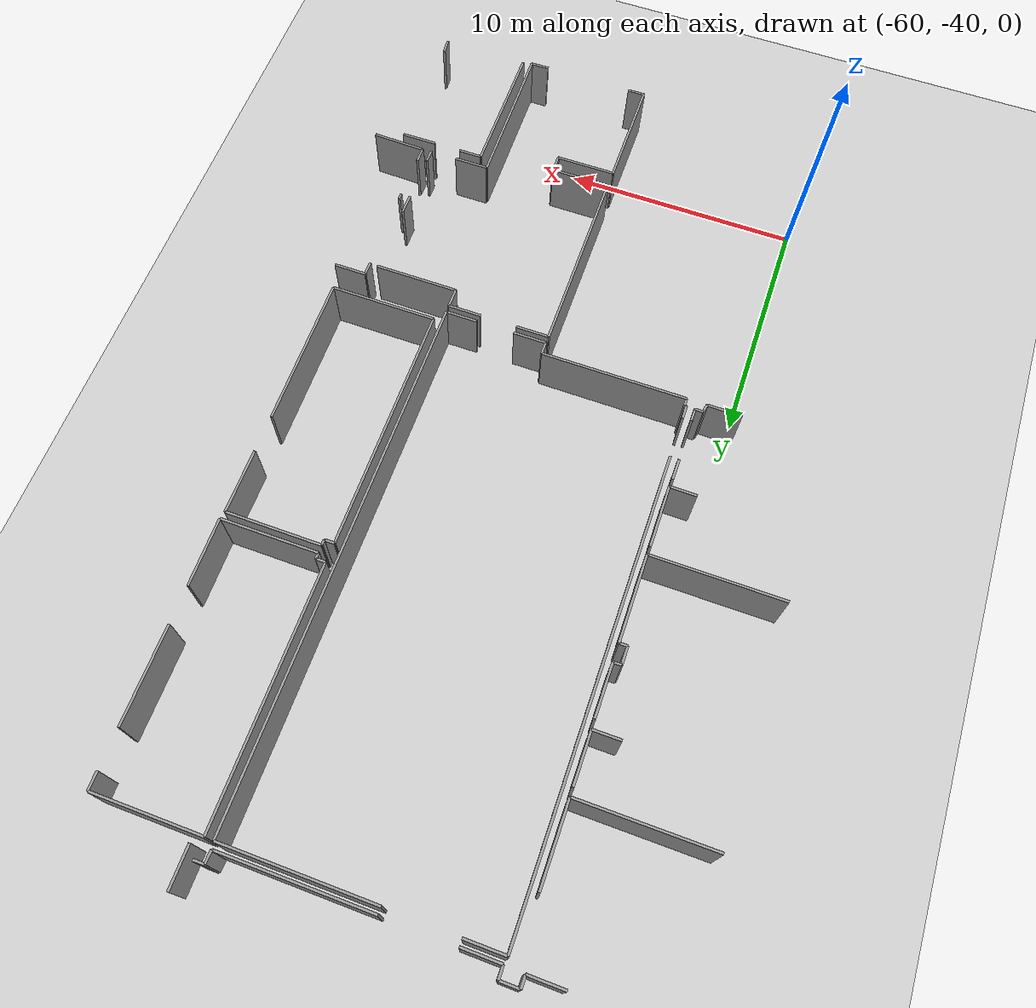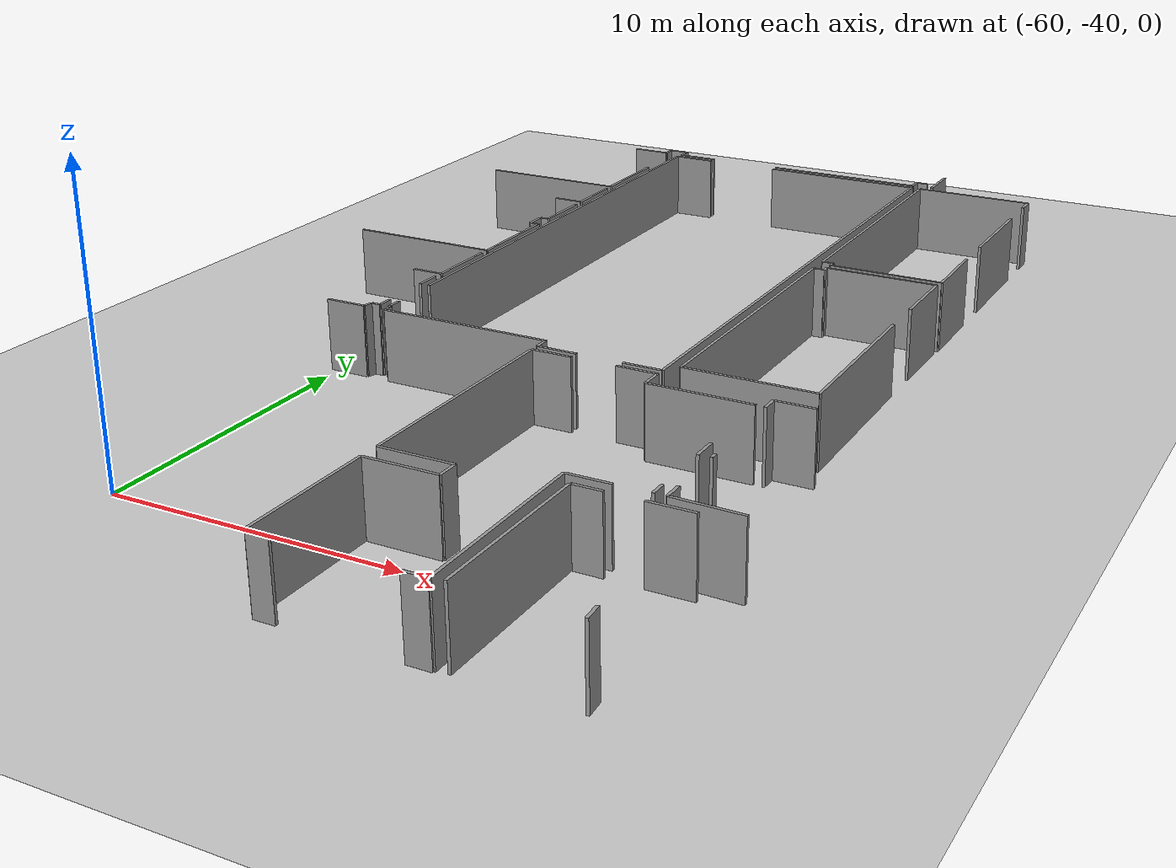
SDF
<sdf version="1.6">
 <world name="default">
  <model name="ground_plane">
   <static>1</static>
   <link name="link">
    <collision name="collision">
     <geometry><plane><normal>0 0 1</normal><size>100 100</size></plane></geometry>
     <surface><friction><ode><mu>100</mu><mu2>50</mu2></ode></friction></surface>
    </collision>
    <visual name="visual">
     <cast_shadows>0</cast_shadows>
     <geometry><plane><normal>0 0 1</normal><size>100 100</size></plane></geometry>
     <material>
      <script><uri>file://media/materials/scripts/gazebo.material</uri><name>Gazebo/Grey</name></script>
     </material>
    </visual>
   </link>
  </model>
  <model name="50015848">
   <static>1</static>
   <link name="Wall_125">
    <collision name="Wall_125_Collision">
     <geometry><box><size>6.00473203128 0.1 2.5</size></box></geometry>
     <pose>3.00236601564 0 1.25 0 0 0</pose>
    </collision>
    <visual name="Wall_125_Visual">
     <pose>3.00236601564 0 1.25 0 0 0</pose>
     <geometry><box><size>6.00473203128 0.1 2.5</size></box></geometry>
     <material>
      <script><uri>file://media/materials/scripts/gazebo.material</uri><name>Gazebo/Grey</name></script>
      <ambient>1 1 1 1</ambient>
     </material>
    </visual>
    <pose>84.1783963108 -51.3000399622 0 0 0 3.14159265359</pose>
   </link>
   <link name="Wall_126">
    <collision name="Wall_126_Collision">
     <geometry><box><size>1.52617523739 0.1 2.5</size></box></geometry>
     <pose>0.763087618697 0 1.25 0 0 0</pose>
    </collision>
    <visual name="Wall_126_Visual">
     <pose>0.763087618697 0 1.25 0 0 0</pose>
     <geometry><box><size>1.52617523739 0.1 2.5</size></box></geometry>
     <material>
      <script><uri>file://media/materials/scripts/gazebo.material</uri><name>Gazebo/Grey</name></script>
      <ambient>1 1 1 1</ambient>
     </material>
    </visual>
    <pose>75.3352066934 -51.3000399622 0 0 0 3.14159265359</pose>
   </link>
   <link name="Wall_127">
    <collision name="Wall_127_Collision">
     <geometry><box><size>0.504665427627 0.1 2.5</size></box></geometry>
     <pose>0.252332713814 0 1.25 0 0 0</pose>
    </collision>
    <visual name="Wall_127_Visual">
     <pose>0.252332713814 0 1.25 0 0 0</pose>
     <geometry><box><size>0.504665427627 0.1 2.5</size></box></geometry>
     <material>
      <script><uri>file://media/materials/scripts/gazebo.material</uri><name>Gazebo/Grey</name></script>
      <ambient>1 1 1 1</ambient>
     </material>
    </visual>
    <pose>73.809031456 -51.3000399622 0 0 0 1.57079632679</pose>
   </link>
   <link name="Wall_128">
    <collision name="Wall_128_Collision">
     <geometry><box><size>0.769557688282 0.1 2.5</size></box></geometry>
     <pose>0.384778844141 0 1.25 0 0 0</pose>
    </collision>
    <visual name="Wall_128_Visual">
     <pose>0.384778844141 0 1.25 0 0 0</pose>
     <geometry><box><size>0.769557688282 0.1 2.5</size></box></geometry>
     <material>
      <script><uri>file://media/materials/scripts/gazebo.material</uri><name>Gazebo/Grey</name></script>
      <ambient>1 1 1 1</ambient>
     </material>
    </visual>
    <pose>73.809031456 -50.7953745346 0 0 0 3.14159265359</pose>
   </link>
   <link name="Wall_129">
    <collision name="Wall_129_Collision">
     <geometry><box><size>0.466606194774 0.1 2.5</size></box></geometry>
     <pose>0.233303097387 0 1.25 0 0 0</pose>
    </collision>
    <visual name="Wall_129_Visual">
     <pose>0.233303097387 0 1.25 0 0 0</pose>
     <geometry><box><size>0.466606194774 0.1 2.5</size></box></geometry>
     <material>
      <script><uri>file://media/materials/scripts/gazebo.material</uri><name>Gazebo/Grey</name></script>
      <ambient>1 1 1 1</ambient>
     </material>
    </visual>
    <pose>73.0394737677 -50.7953745346 0 0 0 -1.57079632679</pose>
   </link>
   <link name="Wall_130">
    <collision name="Wall_130_Collision">
     <geometry><box><size>1.42544513444 0.1 2.5</size></box></geometry>
     <pose>0.712722567222 0 1.25 0 0 0</pose>
    </collision>
    <visual name="Wall_130_Visual">
     <pose>0.712722567222 0 1.25 0 0 0</pose>
     <geometry><box><size>1.42544513444 0.1 2.5</size></box></geometry>
     <material>
      <script><uri>file://media/materials/scripts/gazebo.material</uri><name>Gazebo/Grey</name></script>
      <ambient>1 1 1 1</ambient>
     </material>
    </visual>
    <pose>73.0394737677 -51.2619807293 0 0 0 3.14159265359</pose>
   </link>
   <link name="Wall_175">
    <collision name="Wall_175_Collision">
     <geometry><box><size>0.438949818901 0.1 2.5</size></box></geometry>
     <pose>0.219474909451 0 1.25 0 0 0</pose>
    </collision>
    <visual name="Wall_175_Visual">
     <pose>0.219474909451 0 1.25 0 0 0</pose>
     <geometry><box><size>0.438949818901 0.1 2.5</size></box></geometry>
     <material>
      <script><uri>file://media/materials/scripts/gazebo.material</uri><name>Gazebo/Grey</name></script>
      <ambient>1 1 1 1</ambient>
     </material>
    </visual>
    <pose>84.6424652234 -50.7953745346 0 0 0 3.14159265359</pose>
   </link>
   <link name="Wall_176">
    <collision name="Wall_176_Collision">
     <geometry><box><size>0.50529017674 0.1 2.5</size></box></geometry>
     <pose>0.25264508837 0 1.25 0 0 0</pose>
    </collision>
    <visual name="Wall_176_Visual">
     <pose>0.25264508837 0 1.25 0 0 0</pose>
     <geometry><box><size>0.50529017674 0.1 2.5</size></box></geometry>
     <material>
      <script><uri>file://media/materials/scripts/gazebo.material</uri><name>Gazebo/Grey</name></script>
      <ambient>1 1 1 1</ambient>
     </material>
    </visual>
    <pose>84.2035154045 -50.7953745346 0 0 0 -1.62052903983</pose>
   </link>
   <link name="Wall_459">
    <collision name="Wall_459_Collision">
     <geometry><box><size>1.12985175929 0.1 2.5</size></box></geometry>
     <pose>0.564925879644 0 1.25 0 0 0</pose>
    </collision>
    <visual name="Wall_459_Visual">
     <pose>0.564925879644 0 1.25 0 0 0</pose>
     <geometry><box><size>1.12985175929 0.1 2.5</size></box></geometry>
     <material>
      <script><uri>file://media/materials/scripts/gazebo.material</uri><name>Gazebo/Grey</name></script>
      <ambient>1 1 1 1</ambient>
     </material>
    </visual>
    <pose>73.4177825422 -59.4518201828 0 0 0 3.14159265359</pose>
   </link>
   <link name="Wall_463">
    <collision name="Wall_463_Collision">
     <geometry><box><size>2.09731759653 0.1 2.5</size></box></geometry>
     <pose>1.04865879827 0 1.25 0 0 0</pose>
    </collision>
    <visual name="Wall_463_Visual">
     <pose>1.04865879827 0 1.25 0 0 0</pose>
     <geometry><box><size>2.09731759653 0.1 2.5</size></box></geometry>
     <material>
      <script><uri>file://media/materials/scripts/gazebo.material</uri><name>Gazebo/Grey</name></script>
      <ambient>1 1 1 1</ambient>
     </material>
    </visual>
    <pose>73.4185437269 -57.3545027244 0 0 0 -1.57115925927</pose>
   </link>
   <link name="Wall_464">
    <collision name="Wall_464_Collision">
     <geometry><box><size>5.42876897411 0.1 2.5</size></box></geometry>
     <pose>2.71438448706 0 1.25 0 0 0</pose>
    </collision>
    <visual name="Wall_464_Visual">
     <pose>2.71438448706 0 1.25 0 0 0</pose>
     <geometry><box><size>5.42876897411 0.1 2.5</size></box></geometry>
     <material>
      <script><uri>file://media/materials/scripts/gazebo.material</uri><name>Gazebo/Grey</name></script>
      <ambient>1 1 1 1</ambient>
     </material>
    </visual>
    <pose>73.4388419844 -66.3410487856 0 0 0 3.14159265359</pose>
   </link>
   <link name="Wall_468">
    <collision name="Wall_468_Collision">
     <geometry><box><size>2.16582407754 0.1 2.5</size></box></geometry>
     <pose>1.08291203877 0 1.25 0 0 0</pose>
    </collision>
    <visual name="Wall_468_Visual">
     <pose>1.08291203877 0 1.25 0 0 0</pose>
     <geometry><box><size>2.16582407754 0.1 2.5</size></box></geometry>
     <material>
      <script><uri>file://media/materials/scripts/gazebo.material</uri><name>Gazebo/Grey</name></script>
      <ambient>1 1 1 1</ambient>
     </material>
    </visual>
    <pose>73.4289465839 -59.8352035217 0 0 0 -1.57079632679</pose>
   </link>
   <link name="Wall_469">
    <collision name="Wall_469_Collision">
     <geometry><box><size>0.329085500067 0.1 2.5</size></box></geometry>
     <pose>0.164542750033 0 1.25 0 0 0</pose>
    </collision>
    <visual name="Wall_469_Visual">
     <pose>0.164542750033 0 1.25 0 0 0</pose>
     <geometry><box><size>0.329085500067 0.1 2.5</size></box></geometry>
     <material>
      <script><uri>file://media/materials/scripts/gazebo.material</uri><name>Gazebo/Grey</name></script>
      <ambient>1 1 1 1</ambient>
     </material>
    </visual>
    <pose>73.4289465839 -62.0010275993 0 0 0 3.14159265359</pose>
   </link>
   <link name="Wall_470">
    <collision name="Wall_470_Collision">
     <geometry><box><size>0.74164758419 0.1 2.5</size></box></geometry>
     <pose>0.370823792095 0 1.25 0 0 0</pose>
    </collision>
    <visual name="Wall_470_Visual">
     <pose>0.370823792095 0 1.25 0 0 0</pose>
     <geometry><box><size>0.74164758419 0.1 2.5</size></box></geometry>
     <material>
      <script><uri>file://media/materials/scripts/gazebo.material</uri><name>Gazebo/Grey</name></script>
      <ambient>1 1 1 1</ambient>
     </material>
    </visual>
    <pose>73.0998610838 -62.0010275993 0 0 0 -1.57079632679</pose>
   </link>
   <link name="Wall_471">
    <collision name="Wall_471_Collision">
     <geometry><box><size>0.329085500067 0.1 2.5</size></box></geometry>
     <pose>0.164542750033 0 1.25 0 0 0</pose>
    </collision>
    <visual name="Wall_471_Visual">
     <pose>0.164542750033 0 1.25 0 0 0</pose>
     <geometry><box><size>0.329085500067 0.1 2.5</size></box></geometry>
     <material>
      <script><uri>file://media/materials/scripts/gazebo.material</uri><name>Gazebo/Grey</name></script>
      <ambient>1 1 1 1</ambient>
     </material>
    </visual>
    <pose>73.0998610838 -62.7426751835 0 0 0 0.0</pose>
   </link>
   <link name="Wall_472">
    <collision name="Wall_472_Collision">
     <geometry><box><size>3.59838720809 0.1 2.5</size></box></geometry>
     <pose>1.79919360405 0 1.25 0 0 0</pose>
    </collision>
    <visual name="Wall_472_Visual">
     <pose>1.79919360405 0 1.25 0 0 0</pose>
     <geometry><box><size>3.59838720809 0.1 2.5</size></box></geometry>
     <material>
      <script><uri>file://media/materials/scripts/gazebo.material</uri><name>Gazebo/Grey</name></script>
      <ambient>1 1 1 1</ambient>
     </material>
    </visual>
    <pose>73.4289465839 -62.7426751835 0 0 0 -1.56804636898</pose>
   </link>
   <link name="Wall_477">
    <collision name="Wall_477_Collision">
     <geometry><box><size>1.11615043546 0.1 2.5</size></box></geometry>
     <pose>0.558075217731 0 1.25 0 0 0</pose>
    </collision>
    <visual name="Wall_477_Visual">
     <pose>0.558075217731 0 1.25 0 0 0</pose>
     <geometry><box><size>1.11615043546 0.1 2.5</size></box></geometry>
     <material>
      <script><uri>file://media/materials/scripts/gazebo.material</uri><name>Gazebo/Grey</name></script>
      <ambient>1 1 1 1</ambient>
     </material>
    </visual>
    <pose>73.4251406606 -69.2675500637 0 0 0 3.14159265359</pose>
   </link>
   <link name="Wall_480">
    <collision name="Wall_480_Collision">
     <geometry><box><size>2.58702338526 0.1 2.5</size></box></geometry>
     <pose>1.29351169263 0 1.25 0 0 0</pose>
    </collision>
    <visual name="Wall_480_Visual">
     <pose>1.29351169263 0 1.25 0 0 0</pose>
     <geometry><box><size>2.58702338526 0.1 2.5</size></box></geometry>
     <material>
      <script><uri>file://media/materials/scripts/gazebo.material</uri><name>Gazebo/Grey</name></script>
      <ambient>1 1 1 1</ambient>
     </material>
    </visual>
    <pose>73.4177825422 -66.6805371426 0 0 0 -1.56795208182</pose>
   </link>
   <link name="Wall_481">
    <collision name="Wall_481_Collision">
     <geometry><box><size>1.4381315454 0.1 2.5</size></box></geometry>
     <pose>0.719065772698 0 1.25 0 0 0</pose>
    </collision>
    <visual name="Wall_481_Visual">
     <pose>0.719065772698 0 1.25 0 0 0</pose>
     <geometry><box><size>1.4381315454 0.1 2.5</size></box></geometry>
     <material>
      <script><uri>file://media/materials/scripts/gazebo.material</uri><name>Gazebo/Grey</name></script>
      <ambient>1 1 1 1</ambient>
     </material>
    </visual>
    <pose>72.9889818521 -73.1488306301 0 0 0 3.14159265359</pose>
   </link>
   <link name="Wall_490">
    <collision name="Wall_490_Collision">
     <geometry><box><size>0.89946653642 0.1 2.5</size></box></geometry>
     <pose>0.44973326821 0 1.25 0 0 0</pose>
    </collision>
    <visual name="Wall_490_Visual">
     <pose>0.44973326821 0 1.25 0 0 0</pose>
     <geometry><box><size>0.89946653642 0.1 2.5</size></box></geometry>
     <material>
      <script><uri>file://media/materials/scripts/gazebo.material</uri><name>Gazebo/Grey</name></script>
      <ambient>1 1 1 1</ambient>
     </material>
    </visual>
    <pose>73.3868276995 -69.5984116613 0 0 0 -1.57079632679</pose>
   </link>
   <link name="Wall_491">
    <collision name="Wall_491_Collision">
     <geometry><box><size>0.535873998566 0.1 2.5</size></box></geometry>
     <pose>0.267936999283 0 1.25 0 0 0</pose>
    </collision>
    <visual name="Wall_491_Visual">
     <pose>0.267936999283 0 1.25 0 0 0</pose>
     <geometry><box><size>0.535873998566 0.1 2.5</size></box></geometry>
     <material>
      <script><uri>file://media/materials/scripts/gazebo.material</uri><name>Gazebo/Grey</name></script>
      <ambient>1 1 1 1</ambient>
     </material>
    </visual>
    <pose>73.3868276995 -72.2721996334 0 0 0 -1.57079632679</pose>
   </link>
   <link name="Wall_492">
    <collision name="Wall_492_Collision">
     <geometry><box><size>0.322234838153 0.1 2.5</size></box></geometry>
     <pose>0.161117419077 0 1.25 0 0 0</pose>
    </collision>
    <visual name="Wall_492_Visual">
     <pose>0.161117419077 0 1.25 0 0 0</pose>
     <geometry><box><size>0.322234838153 0.1 2.5</size></box></geometry>
     <material>
      <script><uri>file://media/materials/scripts/gazebo.material</uri><name>Gazebo/Grey</name></script>
      <ambient>1 1 1 1</ambient>
     </material>
    </visual>
    <pose>73.3868276995 -72.8080736319 0 0 0 3.14159265359</pose>
   </link>
   <link name="Wall_493">
    <collision name="Wall_493_Collision">
     <geometry><box><size>0.349044920468 0.1 2.5</size></box></geometry>
     <pose>0.174522460234 0 1.25 0 0 0</pose>
    </collision>
    <visual name="Wall_493_Visual">
     <pose>0.174522460234 0 1.25 0 0 0</pose>
     <geometry><box><size>0.349044920468 0.1 2.5</size></box></geometry>
     <material>
      <script><uri>file://media/materials/scripts/gazebo.material</uri><name>Gazebo/Grey</name></script>
      <ambient>1 1 1 1</ambient>
     </material>
    </visual>
    <pose>73.0645928614 -72.8080736319 0 0 0 -1.78914988988</pose>
   </link>
   <link name="Wall_494">
    <collision name="Wall_494_Collision">
     <geometry><box><size>1.33638652957 0.1 2.5</size></box></geometry>
     <pose>0.668193264784 0 1.25 0 0 0</pose>
    </collision>
    <visual name="Wall_494_Visual">
     <pose>0.668193264784 0 1.25 0 0 0</pose>
     <geometry><box><size>1.33638652957 0.1 2.5</size></box></geometry>
     <material>
      <script><uri>file://media/materials/scripts/gazebo.material</uri><name>Gazebo/Grey</name></script>
      <ambient>1 1 1 1</ambient>
     </material>
    </visual>
    <pose>84.197172199 -73.6748092281 0 0 0 3.14159265359</pose>
   </link>
   <link name="Wall_495">
    <collision name="Wall_495_Collision">
     <geometry><box><size>1.37825168571 0.1 2.5</size></box></geometry>
     <pose>0.689125842853 0 1.25 0 0 0</pose>
    </collision>
    <visual name="Wall_495_Visual">
     <pose>0.689125842853 0 1.25 0 0 0</pose>
     <geometry><box><size>1.37825168571 0.1 2.5</size></box></geometry>
     <material>
      <script><uri>file://media/materials/scripts/gazebo.material</uri><name>Gazebo/Grey</name></script>
      <ambient>1 1 1 1</ambient>
     </material>
    </visual>
    <pose>81.2668649976 -73.6748092281 0 0 0 3.14159265359</pose>
   </link>
   <link name="Wall_496">
    <collision name="Wall_496_Collision">
     <geometry><box><size>0.522426402958 0.1 2.5</size></box></geometry>
     <pose>0.261213201479 0 1.25 0 0 0</pose>
    </collision>
    <visual name="Wall_496_Visual">
     <pose>0.261213201479 0 1.25 0 0 0</pose>
     <geometry><box><size>0.522426402958 0.1 2.5</size></box></geometry>
     <material>
      <script><uri>file://media/materials/scripts/gazebo.material</uri><name>Gazebo/Grey</name></script>
      <ambient>1 1 1 1</ambient>
     </material>
    </visual>
    <pose>79.8886133119 -73.6748092281 0 0 0 1.57079632679</pose>
   </link>
   <link name="Wall_497">
    <collision name="Wall_497_Collision">
     <geometry><box><size>6.06588053207 0.1 2.5</size></box></geometry>
     <pose>3.03294026603 0 1.25 0 0 0</pose>
    </collision>
    <visual name="Wall_497_Visual">
     <pose>3.03294026603 0 1.25 0 0 0</pose>
     <geometry><box><size>6.06588053207 0.1 2.5</size></box></geometry>
     <material>
      <script><uri>file://media/materials/scripts/gazebo.material</uri><name>Gazebo/Grey</name></script>
      <ambient>1 1 1 1</ambient>
     </material>
    </visual>
    <pose>79.8886133119 -73.1523828251 0 0 0 3.14159265359</pose>
   </link>
   <link name="Wall_498">
    <collision name="Wall_498_Collision">
     <geometry><box><size>0.331622782257 0.1 2.5</size></box></geometry>
     <pose>0.165811391128 0 1.25 0 0 0</pose>
    </collision>
    <visual name="Wall_498_Visual">
     <pose>0.165811391128 0 1.25 0 0 0</pose>
     <geometry><box><size>0.331622782257 0.1 2.5</size></box></geometry>
     <material>
      <script><uri>file://media/materials/scripts/gazebo.material</uri><name>Gazebo/Grey</name></script>
      <ambient>1 1 1 1</ambient>
     </material>
    </visual>
    <pose>73.8227327798 -73.1523828251 0 0 0 1.57079632679</pose>
   </link>
   <link name="Wall_499">
    <collision name="Wall_499_Collision">
     <geometry><box><size>0.0768796503625 0.1 2.5</size></box></geometry>
     <pose>0.0384398251813 0 1.25 0 0 0</pose>
    </collision>
    <visual name="Wall_499_Visual">
     <pose>0.0384398251813 0 1.25 0 0 0</pose>
     <geometry><box><size>0.0768796503625 0.1 2.5</size></box></geometry>
     <material>
      <script><uri>file://media/materials/scripts/gazebo.material</uri><name>Gazebo/Grey</name></script>
      <ambient>1 1 1 1</ambient>
     </material>
    </visual>
    <pose>73.8227327798 -72.8207600429 0 0 0 3.14159265359</pose>
   </link>
   <link name="Wall_500">
    <collision name="Wall_500_Collision">
     <geometry><box><size>0.567590025944 0.1 2.5</size></box></geometry>
     <pose>0.283795012972 0 1.25 0 0 0</pose>
    </collision>
    <visual name="Wall_500_Visual">
     <pose>0.283795012972 0 1.25 0 0 0</pose>
     <geometry><box><size>0.567590025944 0.1 2.5</size></box></geometry>
     <material>
      <script><uri>file://media/materials/scripts/gazebo.material</uri><name>Gazebo/Grey</name></script>
      <ambient>1 1 1 1</ambient>
     </material>
    </visual>
    <pose>73.7458531294 -72.8207600429 0 0 0 1.57079632679</pose>
   </link>
   <link name="Wall_501">
    <collision name="Wall_501_Collision">
     <geometry><box><size>18.931931062 0.1 2.5</size></box></geometry>
     <pose>9.46596553102 0 1.25 0 0 0</pose>
    </collision>
    <visual name="Wall_501_Visual">
     <pose>9.46596553102 0 1.25 0 0 0</pose>
     <geometry><box><size>18.931931062 0.1 2.5</size></box></geometry>
     <material>
      <script><uri>file://media/materials/scripts/gazebo.material</uri><name>Gazebo/Grey</name></script>
      <ambient>1 1 1 1</ambient>
     </material>
    </visual>
    <pose>73.7458531294 -70.5092959676 0 0 0 1.57079632679</pose>
   </link>
   <link name="Wall_502">
    <collision name="Wall_502_Collision">
     <geometry><box><size>1.58935356393 0.1 2.5</size></box></geometry>
     <pose>0.794676781965 0 1.25 0 0 0</pose>
    </collision>
    <visual name="Wall_502_Visual">
     <pose>0.794676781965 0 1.25 0 0 0</pose>
     <geometry><box><size>1.58935356393 0.1 2.5</size></box></geometry>
     <material>
      <script><uri>file://media/materials/scripts/gazebo.material</uri><name>Gazebo/Grey</name></script>
      <ambient>1 1 1 1</ambient>
     </material>
    </visual>
    <pose>73.7458531294 -51.5773649056 0 0 0 0.0</pose>
   </link>
   <link name="Wall_503">
    <collision name="Wall_503_Collision">
     <geometry><box><size>6.07247746576 0.1 2.5</size></box></geometry>
     <pose>3.03623873288 0 1.25 0 0 0</pose>
    </collision>
    <visual name="Wall_503_Visual">
     <pose>3.03623873288 0 1.25 0 0 0</pose>
     <geometry><box><size>6.07247746576 0.1 2.5</size></box></geometry>
     <material>
      <script><uri>file://media/materials/scripts/gazebo.material</uri><name>Gazebo/Grey</name></script>
      <ambient>1 1 1 1</ambient>
     </material>
    </visual>
    <pose>78.1703658127 -51.5773649056 0 0 0 0.0</pose>
   </link>
   <link name="Wall_504">
    <collision name="Wall_504_Collision">
     <geometry><box><size>22.097491519 0.1 2.5</size></box></geometry>
     <pose>11.0487457595 0 1.25 0 0 0</pose>
    </collision>
    <visual name="Wall_504_Visual">
     <pose>11.0487457595 0 1.25 0 0 0</pose>
     <geometry><box><size>22.097491519 0.1 2.5</size></box></geometry>
     <material>
      <script><uri>file://media/materials/scripts/gazebo.material</uri><name>Gazebo/Grey</name></script>
      <ambient>1 1 1 1</ambient>
     </material>
    </visual>
    <pose>84.2428432784 -51.5773649056 0 0 0 -1.57286312754</pose>
   </link>
   <link name="Wall_505">
    <collision name="Wall_505_Collision">
     <geometry><box><size>5.42470932261 0.1 2.5</size></box></geometry>
     <pose>2.7123546613 0 1.25 0 0 0</pose>
    </collision>
    <visual name="Wall_505_Visual">
     <pose>2.7123546613 0 1.25 0 0 0</pose>
     <geometry><box><size>5.42470932261 0.1 2.5</size></box></geometry>
     <material>
      <script><uri>file://media/materials/scripts/gazebo.material</uri><name>Gazebo/Grey</name></script>
      <ambient>1 1 1 1</ambient>
     </material>
    </visual>
    <pose>73.4167676294 -57.015775552 0 0 0 3.14159265359</pose>
   </link>
   <link name="Wall_511">
    <collision name="Wall_511_Collision">
     <geometry><box><size>3.25913945724 0.1 2.5</size></box></geometry>
     <pose>1.62956972862 0 1.25 0 0 0</pose>
    </collision>
    <visual name="Wall_511_Visual">
     <pose>1.62956972862 0 1.25 0 0 0</pose>
     <geometry><box><size>3.25913945724 0.1 2.5</size></box></geometry>
     <material>
      <script><uri>file://media/materials/scripts/gazebo.material</uri><name>Gazebo/Grey</name></script>
      <ambient>1 1 1 1</ambient>
     </material>
    </visual>
    <pose>73.4185437269 -53.7566365787 0 0 0 -1.57134128587</pose>
   </link>
   <link name="Wall_512">
    <collision name="Wall_512_Collision">
     <geometry><box><size>1.65481544444 0.1 2.5</size></box></geometry>
     <pose>0.827407722218 0 1.25 0 0 0</pose>
    </collision>
    <visual name="Wall_512_Visual">
     <pose>0.827407722218 0 1.25 0 0 0</pose>
     <geometry><box><size>1.65481544444 0.1 2.5</size></box></geometry>
     <material>
      <script><uri>file://media/materials/scripts/gazebo.material</uri><name>Gazebo/Grey</name></script>
      <ambient>1 1 1 1</ambient>
     </material>
    </visual>
    <pose>84.9723119081 -51.2459958515 0 0 0 1.57079632679</pose>
   </link>
   <link name="Wall_1436">
    <collision name="Wall_1436_Collision">
     <geometry><box><size>4.04544272403 0.1 2.5</size></box></geometry>
     <pose>2.02272136201 0 1.25 0 0 0</pose>
    </collision>
    <visual name="Wall_1436_Visual">
     <pose>2.02272136201 0 1.25 0 0 0</pose>
     <geometry><box><size>4.04544272403 0.1 2.5</size></box></geometry>
     <material>
      <script><uri>file://media/materials/scripts/gazebo.material</uri><name>Gazebo/Grey</name></script>
      <ambient>1 1 1 1</ambient>
     </material>
    </visual>
    <pose>89.0309484995 -62.2344575608 0 0 0 3.14159265359</pose>
   </link>
   <link name="Wall_1437">
    <collision name="Wall_1437_Collision">
     <geometry><box><size>0.249922295733 0.1 2.5</size></box></geometry>
     <pose>0.124961147866 0 1.25 0 0 0</pose>
    </collision>
    <visual name="Wall_1437_Visual">
     <pose>0.124961147866 0 1.25 0 0 0</pose>
     <geometry><box><size>0.249922295733 0.1 2.5</size></box></geometry>
     <material>
      <script><uri>file://media/materials/scripts/gazebo.material</uri><name>Gazebo/Grey</name></script>
      <ambient>1 1 1 1</ambient>
     </material>
    </visual>
    <pose>84.9855057755 -62.2344575608 0 0 0 1.57079632679</pose>
   </link>
   <link name="Wall_1438">
    <collision name="Wall_1438_Collision">
     <geometry><box><size>0.390995185507 0.1 2.5</size></box></geometry>
     <pose>0.195497592754 0 1.25 0 0 0</pose>
    </collision>
    <visual name="Wall_1438_Visual">
     <pose>0.195497592754 0 1.25 0 0 0</pose>
     <geometry><box><size>0.390995185507 0.1 2.5</size></box></geometry>
     <material>
      <script><uri>file://media/materials/scripts/gazebo.material</uri><name>Gazebo/Grey</name></script>
      <ambient>1 1 1 1</ambient>
     </material>
    </visual>
    <pose>84.9855057755 -61.9845352651 0 0 0 3.14159265359</pose>
   </link>
   <link name="Wall_1439">
    <collision name="Wall_1439_Collision">
     <geometry><box><size>10.3919466663 0.1 2.5</size></box></geometry>
     <pose>5.19597333316 0 1.25 0 0 0</pose>
    </collision>
    <visual name="Wall_1439_Visual">
     <pose>5.19597333316 0 1.25 0 0 0</pose>
     <geometry><box><size>10.3919466663 0.1 2.5</size></box></geometry>
     <material>
      <script><uri>file://media/materials/scripts/gazebo.material</uri><name>Gazebo/Grey</name></script>
      <ambient>1 1 1 1</ambient>
     </material>
    </visual>
    <pose>84.59451059 -61.9845352651 0 0 0 1.57079632679</pose>
   </link>
   <link name="Wall_1440">
    <collision name="Wall_1440_Collision">
     <geometry><box><size>4.40700543613 0.1 2.5</size></box></geometry>
     <pose>2.20350271806 0 1.25 0 0 0</pose>
    </collision>
    <visual name="Wall_1440_Visual">
     <pose>2.20350271806 0 1.25 0 0 0</pose>
     <geometry><box><size>4.40700543613 0.1 2.5</size></box></geometry>
     <material>
      <script><uri>file://media/materials/scripts/gazebo.material</uri><name>Gazebo/Grey</name></script>
      <ambient>1 1 1 1</ambient>
     </material>
    </visual>
    <pose>84.59451059 -51.5925885987 0 0 0 0.0</pose>
   </link>
   <link name="Wall_1441">
    <collision name="Wall_1441_Collision">
     <geometry><box><size>0.724901521735 0.1 2.5</size></box></geometry>
     <pose>0.362450760868 0 1.25 0 0 0</pose>
    </collision>
    <visual name="Wall_1441_Visual">
     <pose>0.362450760868 0 1.25 0 0 0</pose>
     <geometry><box><size>0.724901521735 0.1 2.5</size></box></geometry>
     <material>
      <script><uri>file://media/materials/scripts/gazebo.material</uri><name>Gazebo/Grey</name></script>
      <ambient>1 1 1 1</ambient>
     </material>
    </visual>
    <pose>89.0015160261 -51.5925885987 0 0 0 -1.57079632679</pose>
   </link>
   <link name="Wall_1442">
    <collision name="Wall_1442_Collision">
     <geometry><box><size>3.97389136626 0.1 2.5</size></box></geometry>
     <pose>1.98694568313 0 1.25 0 0 0</pose>
    </collision>
    <visual name="Wall_1442_Visual">
     <pose>1.98694568313 0 1.25 0 0 0</pose>
     <geometry><box><size>3.97389136626 0.1 2.5</size></box></geometry>
     <material>
      <script><uri>file://media/materials/scripts/gazebo.material</uri><name>Gazebo/Grey</name></script>
      <ambient>1 1 1 1</ambient>
     </material>
    </visual>
    <pose>89.0015160261 -53.8873066115 0 0 0 -1.57079632679</pose>
   </link>
   <link name="Wall_1443">
    <collision name="Wall_1443_Collision">
     <geometry><box><size>2.82516330806 0.1 2.5</size></box></geometry>
     <pose>1.41258165403 0 1.25 0 0 0</pose>
    </collision>
    <visual name="Wall_1443_Visual">
     <pose>1.41258165403 0 1.25 0 0 0</pose>
     <geometry><box><size>2.82516330806 0.1 2.5</size></box></geometry>
     <material>
      <script><uri>file://media/materials/scripts/gazebo.material</uri><name>Gazebo/Grey</name></script>
      <ambient>1 1 1 1</ambient>
     </material>
    </visual>
    <pose>89.0015160261 -59.4094475702 0 0 0 -1.56037816592</pose>
   </link>
   <link name="Wall_1450">
    <collision name="Wall_1450_Collision">
     <geometry><box><size>4.43897519172 0.1 2.5</size></box></geometry>
     <pose>2.21948759586 0 1.25 0 0 0</pose>
    </collision>
    <visual name="Wall_1450_Visual">
     <pose>2.21948759586 0 1.25 0 0 0</pose>
     <geometry><box><size>4.43897519172 0.1 2.5</size></box></geometry>
     <material>
      <script><uri>file://media/materials/scripts/gazebo.material</uri><name>Gazebo/Grey</name></script>
      <ambient>1 1 1 1</ambient>
     </material>
    </visual>
    <pose>89.0134412524 -73.1815615703 0 0 0 3.14159265359</pose>
   </link>
   <link name="Wall_1451">
    <collision name="Wall_1451_Collision">
     <geometry><box><size>10.3906780252 0.1 2.5</size></box></geometry>
     <pose>5.19533901262 0 1.25 0 0 0</pose>
    </collision>
    <visual name="Wall_1451_Visual">
     <pose>5.19533901262 0 1.25 0 0 0</pose>
     <geometry><box><size>10.3906780252 0.1 2.5</size></box></geometry>
     <material>
      <script><uri>file://media/materials/scripts/gazebo.material</uri><name>Gazebo/Grey</name></script>
      <ambient>1 1 1 1</ambient>
     </material>
    </visual>
    <pose>84.5744660607 -73.1815615703 0 0 0 1.57079632679</pose>
   </link>
   <link name="Wall_1452">
    <collision name="Wall_1452_Collision">
     <geometry><box><size>0.411293443029 0.1 2.5</size></box></geometry>
     <pose>0.205646721514 0 1.25 0 0 0</pose>
    </collision>
    <visual name="Wall_1452_Visual">
     <pose>0.205646721514 0 1.25 0 0 0</pose>
     <geometry><box><size>0.411293443029 0.1 2.5</size></box></geometry>
     <material>
      <script><uri>file://media/materials/scripts/gazebo.material</uri><name>Gazebo/Grey</name></script>
      <ambient>1 1 1 1</ambient>
     </material>
    </visual>
    <pose>84.5744660607 -62.7908835451 0 0 0 0.0</pose>
   </link>
   <link name="Wall_1453">
    <collision name="Wall_1453_Collision">
     <geometry><box><size>0.238504525877 0.1 2.5</size></box></geometry>
     <pose>0.119252262939 0 1.25 0 0 0</pose>
    </collision>
    <visual name="Wall_1453_Visual">
     <pose>0.119252262939 0 1.25 0 0 0</pose>
     <geometry><box><size>0.238504525877 0.1 2.5</size></box></geometry>
     <material>
      <script><uri>file://media/materials/scripts/gazebo.material</uri><name>Gazebo/Grey</name></script>
      <ambient>1 1 1 1</ambient>
     </material>
    </visual>
    <pose>84.9857595037 -62.7908835451 0 0 0 1.57079632679</pose>
   </link>
   <link name="Wall_1454">
    <collision name="Wall_1454_Collision">
     <geometry><box><size>3.97769728955 0.1 2.5</size></box></geometry>
     <pose>1.98884864477 0 1.25 0 0 0</pose>
    </collision>
    <visual name="Wall_1454_Visual">
     <pose>1.98884864477 0 1.25 0 0 0</pose>
     <geometry><box><size>3.97769728955 0.1 2.5</size></box></geometry>
     <material>
      <script><uri>file://media/materials/scripts/gazebo.material</uri><name>Gazebo/Grey</name></script>
      <ambient>1 1 1 1</ambient>
     </material>
    </visual>
    <pose>84.9857595037 -62.5523790192 0 0 0 0.0</pose>
   </link>
   <link name="Wall_1455">
    <collision name="Wall_1455_Collision">
     <geometry><box><size>2.69941452213 0.1 2.5</size></box></geometry>
     <pose>1.34970726107 0 1.25 0 0 0</pose>
    </collision>
    <visual name="Wall_1455_Visual">
     <pose>1.34970726107 0 1.25 0 0 0</pose>
     <geometry><box><size>2.69941452213 0.1 2.5</size></box></geometry>
     <material>
      <script><uri>file://media/materials/scripts/gazebo.material</uri><name>Gazebo/Grey</name></script>
      <ambient>1 1 1 1</ambient>
     </material>
    </visual>
    <pose>88.9634567933 -62.5523790192 0 0 0 -1.57079632679</pose>
   </link>
   <link name="Wall_1456">
    <collision name="Wall_1456_Collision">
     <geometry><box><size>6.35938679395 0.1 2.5</size></box></geometry>
     <pose>3.17969339697 0 1.25 0 0 0</pose>
    </collision>
    <visual name="Wall_1456_Visual">
     <pose>3.17969339697 0 1.25 0 0 0</pose>
     <geometry><box><size>6.35938679395 0.1 2.5</size></box></geometry>
     <material>
      <script><uri>file://media/materials/scripts/gazebo.material</uri><name>Gazebo/Grey</name></script>
      <ambient>1 1 1 1</ambient>
     </material>
    </visual>
    <pose>88.9634567933 -66.8223712171 0 0 0 -1.56293629635</pose>
   </link>
   <link name="Wall_1457">
    <collision name="Wall_1457_Collision">
     <geometry><box><size>0.787572391832 0.1 2.5</size></box></geometry>
     <pose>0.393786195916 0 1.25 0 0 0</pose>
    </collision>
    <visual name="Wall_1457_Visual">
     <pose>0.393786195916 0 1.25 0 0 0</pose>
     <geometry><box><size>0.787572391832 0.1 2.5</size></box></geometry>
     <material>
      <script><uri>file://media/materials/scripts/gazebo.material</uri><name>Gazebo/Grey</name></script>
      <ambient>1 1 1 1</ambient>
     </material>
    </visual>
    <pose>85.1803690477 -87.4068341696 0 0 0 3.14159265359</pose>
   </link>
   <link name="Wall_1458">
    <collision name="Wall_1458_Collision">
     <geometry><box><size>0.719065772698 0.1 2.5</size></box></geometry>
     <pose>0.359532886349 0 1.25 0 0 0</pose>
    </collision>
    <visual name="Wall_1458_Visual">
     <pose>0.359532886349 0 1.25 0 0 0</pose>
     <geometry><box><size>0.719065772698 0.1 2.5</size></box></geometry>
     <material>
      <script><uri>file://media/materials/scripts/gazebo.material</uri><name>Gazebo/Grey</name></script>
      <ambient>1 1 1 1</ambient>
     </material>
    </visual>
    <pose>80.5703810364 -87.4068341696 0 0 0 3.14159265359</pose>
   </link>
   <link name="Wall_1459">
    <collision name="Wall_1459_Collision">
     <geometry><box><size>4.67976327157 0.1 2.5</size></box></geometry>
     <pose>2.33988163579 0 1.25 0 0 0</pose>
    </collision>
    <visual name="Wall_1459_Visual">
     <pose>2.33988163579 0 1.25 0 0 0</pose>
     <geometry><box><size>4.67976327157 0.1 2.5</size></box></geometry>
     <material>
      <script><uri>file://media/materials/scripts/gazebo.material</uri><name>Gazebo/Grey</name></script>
      <ambient>1 1 1 1</ambient>
     </material>
    </visual>
    <pose>79.8513152637 -87.4068341696 0 0 0 1.57079632679</pose>
   </link>
   <link name="Wall_1460">
    <collision name="Wall_1460_Collision">
     <geometry><box><size>2.50353633705 0.1 2.5</size></box></geometry>
     <pose>1.25176816853 0 1.25 0 0 0</pose>
    </collision>
    <visual name="Wall_1460_Visual">
     <pose>1.25176816853 0 1.25 0 0 0</pose>
     <geometry><box><size>2.50353633705 0.1 2.5</size></box></geometry>
     <material>
      <script><uri>file://media/materials/scripts/gazebo.material</uri><name>Gazebo/Grey</name></script>
      <ambient>1 1 1 1</ambient>
     </material>
    </visual>
    <pose>79.8513152637 -82.727070898 0 0 0 0.0</pose>
   </link>
   <link name="Wall_1461">
    <collision name="Wall_1461_Collision">
     <geometry><box><size>0.71069274147 0.1 2.5</size></box></geometry>
     <pose>0.355346370735 0 1.25 0 0 0</pose>
    </collision>
    <visual name="Wall_1461_Visual">
     <pose>0.355346370735 0 1.25 0 0 0</pose>
     <geometry><box><size>0.71069274147 0.1 2.5</size></box></geometry>
     <material>
      <script><uri>file://media/materials/scripts/gazebo.material</uri><name>Gazebo/Grey</name></script>
      <ambient>1 1 1 1</ambient>
     </material>
    </visual>
    <pose>82.3548516007 -82.727070898 0 0 0 1.57079632679</pose>
   </link>
   <link name="Wall_1462">
    <collision name="Wall_1462_Collision">
     <geometry><box><size>2.48070079734 0.1 2.5</size></box></geometry>
     <pose>1.24035039867 0 1.25 0 0 0</pose>
    </collision>
    <visual name="Wall_1462_Visual">
     <pose>1.24035039867 0 1.25 0 0 0</pose>
     <geometry><box><size>2.48070079734 0.1 2.5</size></box></geometry>
     <material>
      <script><uri>file://media/materials/scripts/gazebo.material</uri><name>Gazebo/Grey</name></script>
      <ambient>1 1 1 1</ambient>
     </material>
    </visual>
    <pose>82.3548516007 -82.0163781565 0 0 0 3.14159265359</pose>
   </link>
   <link name="Wall_1463">
    <collision name="Wall_1463_Collision">
     <geometry><box><size>8.03709506562 0.1 2.5</size></box></geometry>
     <pose>4.01854753281 0 1.25 0 0 0</pose>
    </collision>
    <visual name="Wall_1463_Visual">
     <pose>4.01854753281 0 1.25 0 0 0</pose>
     <geometry><box><size>8.03709506562 0.1 2.5</size></box></geometry>
     <material>
      <script><uri>file://media/materials/scripts/gazebo.material</uri><name>Gazebo/Grey</name></script>
      <ambient>1 1 1 1</ambient>
     </material>
    </visual>
    <pose>79.8741508034 -82.0163781565 0 0 0 1.57079632679</pose>
   </link>
   <link name="Wall_1464">
    <collision name="Wall_1464_Collision">
     <geometry><box><size>1.39271419419 0.1 2.5</size></box></geometry>
     <pose>0.696357097095 0 1.25 0 0 0</pose>
    </collision>
    <visual name="Wall_1464_Visual">
     <pose>0.696357097095 0 1.25 0 0 0</pose>
     <geometry><box><size>1.39271419419 0.1 2.5</size></box></geometry>
     <material>
      <script><uri>file://media/materials/scripts/gazebo.material</uri><name>Gazebo/Grey</name></script>
      <ambient>1 1 1 1</ambient>
     </material>
    </visual>
    <pose>79.8741508034 -73.9792830909 0 0 0 0.0</pose>
   </link>
   <link name="Wall_1465">
    <collision name="Wall_1465_Collision">
     <geometry><box><size>1.38713217337 0.1 2.5</size></box></geometry>
     <pose>0.693566086686 0 1.25 0 0 0</pose>
    </collision>
    <visual name="Wall_1465_Visual">
     <pose>0.693566086686 0 1.25 0 0 0</pose>
     <geometry><box><size>1.38713217337 0.1 2.5</size></box></geometry>
     <material>
      <script><uri>file://media/materials/scripts/gazebo.material</uri><name>Gazebo/Grey</name></script>
      <ambient>1 1 1 1</ambient>
     </material>
    </visual>
    <pose>82.8100400256 -73.9792830909 0 0 0 0.0</pose>
   </link>
   <link name="Wall_1466">
    <collision name="Wall_1466_Collision">
     <geometry><box><size>0.797975248812 0.1 2.5</size></box></geometry>
     <pose>0.398987624406 0 1.25 0 0 0</pose>
    </collision>
    <visual name="Wall_1466_Visual">
     <pose>0.398987624406 0 1.25 0 0 0</pose>
     <geometry><box><size>0.797975248812 0.1 2.5</size></box></geometry>
     <material>
      <script><uri>file://media/materials/scripts/gazebo.material</uri><name>Gazebo/Grey</name></script>
      <ambient>1 1 1 1</ambient>
     </material>
    </visual>
    <pose>84.197172199 -73.9792830909 0 0 0 -1.57079632679</pose>
   </link>
   <link name="Wall_1467">
    <collision name="Wall_1467_Collision">
     <geometry><box><size>3.51591193094 0.1 2.5</size></box></geometry>
     <pose>1.75795596547 0 1.25 0 0 0</pose>
    </collision>
    <visual name="Wall_1467_Visual">
     <pose>1.75795596547 0 1.25 0 0 0</pose>
     <geometry><box><size>3.51591193094 0.1 2.5</size></box></geometry>
     <material>
      <script><uri>file://media/materials/scripts/gazebo.material</uri><name>Gazebo/Grey</name></script>
      <ambient>1 1 1 1</ambient>
     </material>
    </visual>
    <pose>84.197172199 -74.7772583397 0 0 0 0.0</pose>
   </link>
   <link name="Wall_1468">
    <collision name="Wall_1468_Collision">
     <geometry><box><size>0.84516869755 0.1 2.5</size></box></geometry>
     <pose>0.422584348775 0 1.25 0 0 0</pose>
    </collision>
    <visual name="Wall_1468_Visual">
     <pose>0.422584348775 0 1.25 0 0 0</pose>
     <geometry><box><size>0.84516869755 0.1 2.5</size></box></geometry>
     <material>
      <script><uri>file://media/materials/scripts/gazebo.material</uri><name>Gazebo/Grey</name></script>
      <ambient>1 1 1 1</ambient>
     </material>
    </visual>
    <pose>87.7130841299 -77.7151773877 0 0 0 -1.57079632679</pose>
   </link>
   <link name="Wall_1469">
    <collision name="Wall_1469_Collision">
     <geometry><box><size>0.551351419927 0.1 2.5</size></box></geometry>
     <pose>0.275675709963 0 1.25 0 0 0</pose>
    </collision>
    <visual name="Wall_1469_Visual">
     <pose>0.275675709963 0 1.25 0 0 0</pose>
     <geometry><box><size>0.551351419927 0.1 2.5</size></box></geometry>
     <material>
      <script><uri>file://media/materials/scripts/gazebo.material</uri><name>Gazebo/Grey</name></script>
      <ambient>1 1 1 1</ambient>
     </material>
    </visual>
    <pose>87.7130841299 -80.5944852172 0 0 0 -1.57079632679</pose>
   </link>
   <link name="Wall_1470">
    <collision name="Wall_1470_Collision">
     <geometry><box><size>1.43635544786 0.1 2.5</size></box></geometry>
     <pose>0.718177723931 0 1.25 0 0 0</pose>
    </collision>
    <visual name="Wall_1470_Visual">
     <pose>0.718177723931 0 1.25 0 0 0</pose>
     <geometry><box><size>1.43635544786 0.1 2.5</size></box></geometry>
     <material>
      <script><uri>file://media/materials/scripts/gazebo.material</uri><name>Gazebo/Grey</name></script>
      <ambient>1 1 1 1</ambient>
     </material>
    </visual>
    <pose>86.5619192002 -81.1458366371 0 0 0 3.14159265359</pose>
   </link>
   <link name="Wall_1471">
    <collision name="Wall_1471_Collision">
     <geometry><box><size>6.26123739546 0.1 2.5</size></box></geometry>
     <pose>3.13061869773 0 1.25 0 0 0</pose>
    </collision>
    <visual name="Wall_1471_Visual">
     <pose>3.13061869773 0 1.25 0 0 0</pose>
     <geometry><box><size>6.26123739546 0.1 2.5</size></box></geometry>
     <material>
      <script><uri>file://media/materials/scripts/gazebo.material</uri><name>Gazebo/Grey</name></script>
      <ambient>1 1 1 1</ambient>
     </material>
    </visual>
    <pose>85.1255637524 -81.1458366371 0 0 0 -1.56204310571</pose>
   </link>
   <link name="Wall_1472">
    <collision name="Wall_1472_Collision">
     <geometry><box><size>0.567336297725 0.1 2.5</size></box></geometry>
     <pose>0.283668148862 0 1.25 0 0 0</pose>
    </collision>
    <visual name="Wall_1472_Visual">
     <pose>0.283668148862 0 1.25 0 0 0</pose>
     <geometry><box><size>0.567336297725 0.1 2.5</size></box></geometry>
     <material>
      <script><uri>file://media/materials/scripts/gazebo.material</uri><name>Gazebo/Grey</name></script>
      <ambient>1 1 1 1</ambient>
     </material>
    </visual>
    <pose>88.0299906755 -74.813541475 0 0 0 1.57079632679</pose>
   </link>
   <link name="Wall_1473">
    <collision name="Wall_1473_Collision">
     <geometry><box><size>1.35135649449 0.1 2.5</size></box></geometry>
     <pose>0.675678247245 0 1.25 0 0 0</pose>
    </collision>
    <visual name="Wall_1473_Visual">
     <pose>0.675678247245 0 1.25 0 0 0</pose>
     <geometry><box><size>1.35135649449 0.1 2.5</size></box></geometry>
     <material>
      <script><uri>file://media/materials/scripts/gazebo.material</uri><name>Gazebo/Grey</name></script>
      <ambient>1 1 1 1</ambient>
     </material>
    </visual>
    <pose>88.0299906755 -74.2462051773 0 0 0 0.0</pose>
   </link>
   <link name="Wall_1513">
    <collision name="Wall_1513_Collision">
     <geometry><box><size>0.247638741762 0.1 2.5</size></box></geometry>
     <pose>0.123819370881 0 1.25 0 0 0</pose>
    </collision>
    <visual name="Wall_1513_Visual">
     <pose>0.123819370881 0 1.25 0 0 0</pose>
     <geometry><box><size>0.247638741762 0.1 2.5</size></box></geometry>
     <material>
      <script><uri>file://media/materials/scripts/gazebo.material</uri><name>Gazebo/Grey</name></script>
      <ambient>1 1 1 1</ambient>
     </material>
    </visual>
    <pose>88.1134672595 -78.3002746608 0 0 0 -1.57079632679</pose>
   </link>
   <link name="Wall_1514">
    <collision name="Wall_1514_Collision">
     <geometry><box><size>0.643201035211 0.1 2.5</size></box></geometry>
     <pose>0.321600517606 0 1.25 0 0 0</pose>
    </collision>
    <visual name="Wall_1514_Visual">
     <pose>0.321600517606 0 1.25 0 0 0</pose>
     <geometry><box><size>0.643201035211 0.1 2.5</size></box></geometry>
     <material>
      <script><uri>file://media/materials/scripts/gazebo.material</uri><name>Gazebo/Grey</name></script>
      <ambient>1 1 1 1</ambient>
     </material>
    </visual>
    <pose>88.1134672595 -80.4780239646 0 0 0 -1.57079632679</pose>
   </link>
   <link name="Wall_1515">
    <collision name="Wall_1515_Collision">
     <geometry><box><size>2.25303550843 0.1 2.5</size></box></geometry>
     <pose>1.12651775421 0 1.25 0 0 0</pose>
    </collision>
    <visual name="Wall_1515_Visual">
     <pose>1.12651775421 0 1.25 0 0 0</pose>
     <geometry><box><size>2.25303550843 0.1 2.5</size></box></geometry>
     <material>
      <script><uri>file://media/materials/scripts/gazebo.material</uri><name>Gazebo/Grey</name></script>
      <ambient>1 1 1 1</ambient>
     </material>
    </visual>
    <pose>88.1134672595 -81.1212249998 0 0 0 -0.0289463966217</pose>
   </link>
   <link name="Wall_1517">
    <collision name="Wall_1517_Collision">
     <geometry><box><size>5.72258625174 0.1 2.5</size></box></geometry>
     <pose>2.86129312587 0 1.25 0 0 0</pose>
    </collision>
    <visual name="Wall_1517_Visual">
     <pose>2.86129312587 0 1.25 0 0 0</pose>
     <geometry><box><size>5.72258625174 0.1 2.5</size></box></geometry>
     <material>
      <script><uri>file://media/materials/scripts/gazebo.material</uri><name>Gazebo/Grey</name></script>
      <ambient>1 1 1 1</ambient>
     </material>
    </visual>
    <pose>85.5754238847 -87.3426409302 0 0 0 1.57079632679</pose>
   </link>
   <link name="Wall_1518">
    <collision name="Wall_1518_Collision">
     <geometry><box><size>0.984211761572 0.1 2.5</size></box></geometry>
     <pose>0.492105880786 0 1.25 0 0 0</pose>
    </collision>
    <visual name="Wall_1518_Visual">
     <pose>0.492105880786 0 1.25 0 0 0</pose>
     <geometry><box><size>0.984211761572 0.1 2.5</size></box></geometry>
     <material>
      <script><uri>file://media/materials/scripts/gazebo.material</uri><name>Gazebo/Grey</name></script>
      <ambient>1 1 1 1</ambient>
     </material>
    </visual>
    <pose>85.5754238847 -81.6200546784 0 0 0 0.0</pose>
   </link>
   <link name="Wall_1519">
    <collision name="Wall_1519_Collision">
     <geometry><box><size>1.48101161441 0.1 2.5</size></box></geometry>
     <pose>0.740505807205 0 1.25 0 0 0</pose>
    </collision>
    <visual name="Wall_1519_Visual">
     <pose>0.740505807205 0 1.25 0 0 0</pose>
     <geometry><box><size>1.48101161441 0.1 2.5</size></box></geometry>
     <material>
      <script><uri>file://media/materials/scripts/gazebo.material</uri><name>Gazebo/Grey</name></script>
      <ambient>1 1 1 1</ambient>
     </material>
    </visual>
    <pose>87.732874931 -81.6200546784 0 0 0 0.0</pose>
   </link>
   <link name="Wall_1522">
    <collision name="Wall_1522_Collision">
     <geometry><box><size>0.602946288641 0.1 2.5</size></box></geometry>
     <pose>0.30147314432 0 1.25 0 0 0</pose>
    </collision>
    <visual name="Wall_1522_Visual">
     <pose>0.30147314432 0 1.25 0 0 0</pose>
     <geometry><box><size>0.602946288641 0.1 2.5</size></box></geometry>
     <material>
      <script><uri>file://media/materials/scripts/gazebo.material</uri><name>Gazebo/Grey</name></script>
      <ambient>1 1 1 1</ambient>
     </material>
    </visual>
    <pose>89.2138865454 -86.7418125075 0 0 0 -1.48695616089</pose>
   </link>
   <pose>-131.8 43.7717730528 0 0 0 0</pose>
  </model>
 </world>
</sdf>
